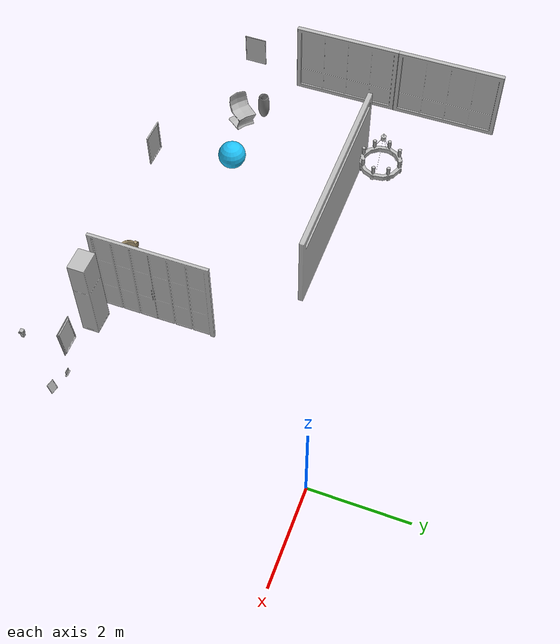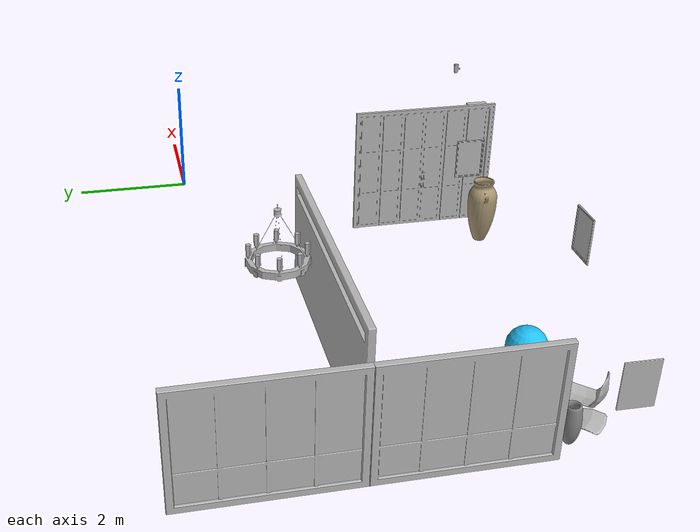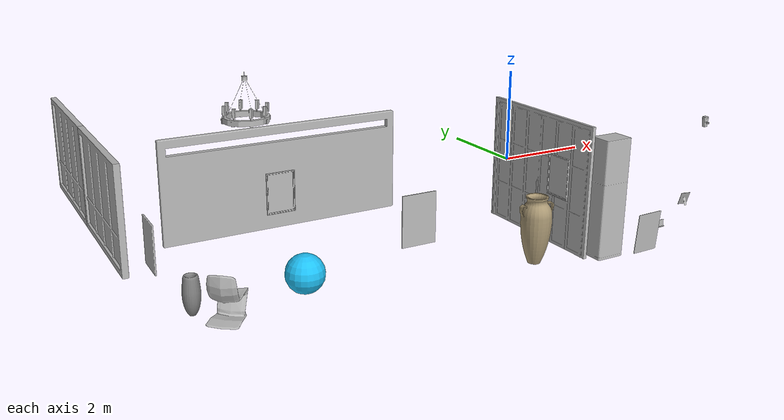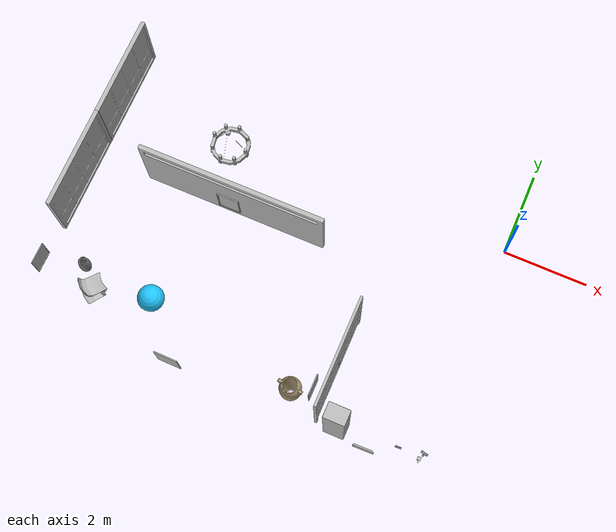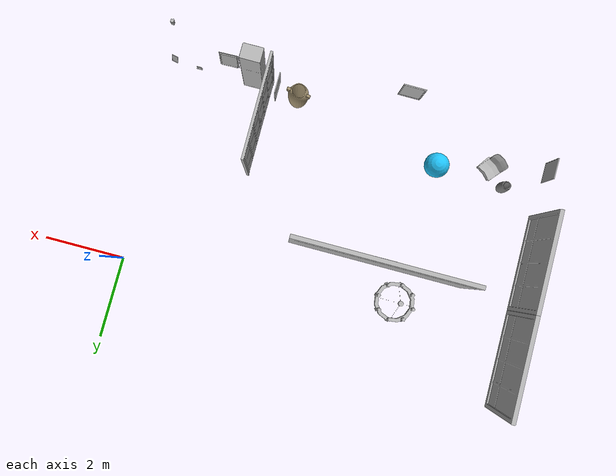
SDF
<sdf version="1.6">
 <world name="default">
  <model name="AirconditionerB_01_001">
   <static>1</static>
   <link name="aws_robomaker_residential_AirconditionerB_01::link">
    <inertial><mass>1</mass></inertial>
    <collision name="collision">
     <geometry>
      <mesh>
       <uri>model://aws_robomaker_residential_AirconditionerB_01/meshes/aws_AirconditionerB_01_collision.DAE</uri>
       <scale>1 1 1</scale>
      </mesh>
     </geometry>
    </collision>
    <visual name="visual">
     <geometry>
      <mesh>
       <uri>model://aws_robomaker_residential_AirconditionerB_01/meshes/aws_AirconditionerB_01_visual.DAE</uri>
      </mesh>
     </geometry>
     <meta><layer>1</layer></meta>
    </visual>
   </link>
   <pose>-2.00466 -5.22661 0.003485 0 -0 0</pose>
  </model>
  <model name="Ball_01_003">
   <static>1</static>
   <link name="aws_robomaker_residential_Ball_01::link">
    <inertial>
     <mass>0.12</mass>
     <inertia>
      <ixx>0.030752</ixx>
      <ixy>0</ixy>
      <ixz>0</ixz>
      <iyy>0.030752</iyy>
      <iyz>0</iyz>
      <izz>0.030752</izz>
     </inertia>
    </inertial>
    <collision name="collision">
     <geometry><sphere><radius>0.31</radius></sphere></geometry>
     <surface>
      <friction><ode><mu>0.85</mu><mu2>0.85</mu2></ode></friction>
      <contact><ode><kd>8500</kd><max_vel>5.1</max_vel></ode></contact>
     </surface>
    </collision>
    <visual name="visual">
     <geometry><sphere><radius>0.31</radius></sphere></geometry>
     <material><diffuse>0.12 0.76 0.97 1</diffuse><ambient>0.03 0.21 0.27 1</ambient></material>
     <meta><layer>1</layer></meta>
    </visual>
   </link>
   <pose>-6.9455 -4.22174 0.318684 0 -0 0</pose>
  </model>
  <model name="ChairD_01_003">
   <static>1</static>
   <link name="aws_robomaker_residential_ChairD_01::link">
    <inertial>
     <mass>4.5</mass>
     <inertia><ixy>0</ixy><ixz>0</ixz><iyz>0</iyz><ixx>0.217</ixx><iyy>0.217</iyy><izz>0.067</izz></inertia>
    </inertial>
    <collision name="collision">
     <geometry>
      <mesh>
       <uri>model://aws_robomaker_residential_ChairD_01/meshes/aws_ChairD_01_collision.DAE</uri>
       <scale>1 1 1</scale>
      </mesh>
     </geometry>
    </collision>
    <visual name="visual">
     <geometry>
      <mesh><uri>model://aws_robomaker_residential_ChairD_01/meshes/aws_ChairD_01_visual.DAE</uri></mesh>
     </geometry>
     <meta><layer>1</layer></meta>
    </visual>
   </link>
   <pose>-8.27078 -4.50446 0 0 -0 0.869673</pose>
  </model>
  <model name="Chandelier_01_002">
   <static>1</static>
   <link name="aws_robomaker_residential_Chandelier_01::link">
    <inertial><mass>1</mass></inertial>
    <collision name="collision">
     <geometry>
      <mesh>
       <uri>model://aws_robomaker_residential_Chandelier_01/meshes/aws_Chandelier_01_collision.DAE</uri>
       <scale>1 1 1</scale>
      </mesh>
     </geometry>
    </collision>
    <visual name="visual">
     <geometry>
      <mesh><uri>model://aws_robomaker_residential_Chandelier_01/meshes/aws_Chandelier_01_visual.DAE</uri></mesh>
     </geometry>
     <meta><layer>2</layer></meta>
    </visual>
   </link>
   <static>1</static>
   <pose>-6.45106 -0.69204 1.81 0 -0 0</pose>
  </model>
  <model name="FoldingDoor_01_002">
   <static>1</static>
   <link name="aws_robomaker_residential_FoldingDoor_01::link">
    <inertial><mass>1</mass></inertial>
    <collision name="collision">
     <geometry>
      <mesh>
       <uri>model://aws_robomaker_residential_FoldingDoor_01/meshes/aws_FoldingDoor_01_collision.DAE</uri>
       <scale>1 1 1</scale>
      </mesh>
     </geometry>
    </collision>
    <visual name="visual">
     <geometry>
      <mesh><uri>model://aws_robomaker_residential_FoldingDoor_01/meshes/aws_FoldingDoor_01_visual.DAE</uri></mesh>
     </geometry>
     <meta><layer>2</layer></meta>
    </visual>
   </link>
   <static>1</static>
   <pose>-2.4611 -4.05332 0.041881 0 -0 0</pose>
  </model>
  <model name="LightC_01_002">
   <static>1</static>
   <link name="aws_robomaker_residential_LightC_01::link">
    <inertial><mass>1</mass></inertial>
    <collision name="collision">
     <geometry>
      <mesh>
       <uri>model://aws_robomaker_residential_LightC_01/meshes/aws_LightC_01_collision.DAE</uri>
       <scale>1 1 1</scale>
      </mesh>
     </geometry>
    </collision>
    <visual name="visual">
     <geometry>
      <mesh><uri>model://aws_robomaker_residential_LightC_01/meshes/aws_LightC_01_visual.DAE</uri></mesh>
     </geometry>
     <meta><layer>2</layer></meta>
    </visual>
   </link>
   <static>1</static>
   <pose>-0.138245 -5.44437 2 0 -0 0</pose>
  </model>
  <model name="PortraitA_01">
   <static>1</static>
   <link name="aws_robomaker_residential_PortraitA_01::link">
    <inertial><mass>1</mass></inertial>
    <collision name="collision">
     <geometry>
      <mesh>
       <uri>model://aws_robomaker_residential_PortraitA_01/meshes/aws_PortraitA_01_collision.DAE</uri>
       <scale>1 1 1</scale>
      </mesh>
     </geometry>
    </collision>
    <visual name="visual">
     <geometry>
      <mesh><uri>model://aws_robomaker_residential_PortraitA_01/meshes/aws_PortraitA_01_visual.DAE</uri></mesh>
     </geometry>
     <meta><layer>2</layer></meta>
    </visual>
   </link>
   <static>1</static>
   <pose>-2.71236 -4.81754 1 0 -0 1.5668</pose>
  </model>
  <model name="PortraitB_01">
   <static>1</static>
   <link name="aws_robomaker_residential_PortraitB_01::link">
    <inertial><mass>1</mass></inertial>
    <collision name="collision">
     <geometry>
      <mesh>
       <uri>model://aws_robomaker_residential_PortraitB_01/meshes/aws_PortraitB_01_collision.DAE</uri>
       <scale>1 1 1</scale>
      </mesh>
     </geometry>
    </collision>
    <visual name="visual">
     <geometry>
      <mesh><uri>model://aws_robomaker_residential_PortraitB_01/meshes/aws_PortraitB_01_visual.DAE</uri></mesh>
     </geometry>
     <meta><layer>2</layer></meta>
    </visual>
   </link>
   <static>1</static>
   <pose>-1.27968 -5.42963 0 -0.076901 0 -3.11672</pose>
  </model>
  <model name="PortraitC_01">
   <static>1</static>
   <link name="aws_robomaker_residential_PortraitC_01::link">
    <inertial><mass>1</mass></inertial>
    <collision name="collision">
     <geometry>
      <mesh>
       <uri>model://aws_robomaker_residential_PortraitC_01/meshes/aws_PortraitC_01_collision.DAE</uri>
       <scale>1 1 1</scale>
      </mesh>
     </geometry>
    </collision>
    <visual name="visual">
     <geometry>
      <mesh><uri>model://aws_robomaker_residential_PortraitC_01/meshes/aws_PortraitC_01_visual.DAE</uri></mesh>
     </geometry>
     <meta><layer>2</layer></meta>
    </visual>
   </link>
   <static>1</static>
   <pose>-9.2949 -4.52608 1 0 -0 1.55473</pose>
  </model>
  <model name="PortraitE_01">
   <static>1</static>
   <link name="aws_robomaker_residential_PortraitE_01::link">
    <inertial><mass>1</mass></inertial>
    <collision name="collision">
     <geometry>
      <mesh>
       <uri>model://aws_robomaker_residential_PortraitE_01/meshes/aws_PortraitE_01_collision.DAE</uri>
       <scale>1 1 1</scale>
      </mesh>
     </geometry>
    </collision>
    <visual name="visual">
     <geometry>
      <mesh><uri>model://aws_robomaker_residential_PortraitE_01/meshes/aws_PortraitE_01_visual.DAE</uri></mesh>
     </geometry>
     <meta><layer>2</layer></meta>
    </visual>
   </link>
   <static>1</static>
   <pose>-5.77309 -5.49247 1 0 -0 3.13263</pose>
  </model>
  <model name="PortraitE_02">
   <static>1</static>
   <link name="aws_robomaker_residential_PortraitE_02::link">
    <inertial><mass>1</mass></inertial>
    <collision name="collision">
     <geometry>
      <mesh>
       <uri>model://aws_robomaker_residential_PortraitE_02/meshes/aws_PortraitE_01_collision.DAE</uri>
       <scale>1 1 1</scale>
      </mesh>
     </geometry>
    </collision>
    <visual name="visual">
     <geometry>
      <mesh><uri>model://aws_robomaker_residential_PortraitE_02/meshes/aws_PortraitE_01_visual.DAE</uri></mesh>
     </geometry>
     <meta><layer>2</layer></meta>
    </visual>
   </link>
   <static>1</static>
   <pose>-6.19302 -1.59021 0.3 0 -0 0.00429</pose>
  </model>
  <model name="DeskPortraitA_01">
   <static>1</static>
   <link name="aws_robomaker_residential_DeskPortraitA_01::link">
    <inertial>
     <mass>1</mass>
     <inertia><ixx>0.0835</ixx><ixy>0</ixy><ixz>0</ixz><iyy>0.16</iyy><iyz>0</iyz><izz>0.08347</izz></inertia>
    </inertial>
    <collision name="collision">
     <geometry>
      <mesh>
       <uri>model://aws_robomaker_residential_DeskPortraitA_01/meshes/aws_DeskPortraitA_01_collision.DAE</uri>
       <scale>1 1 1</scale>
      </mesh>
     </geometry>
    </collision>
    <visual name="visual">
     <geometry>
      <mesh>
       <uri>model://aws_robomaker_residential_DeskPortraitA_01/meshes/aws_DeskPortraitA_01_visual.DAE</uri>
      </mesh>
     </geometry>
     <meta><layer>1</layer></meta>
    </visual>
   </link>
   <pose>-0.036864 -5.11016 0.49866 0 -0 2.92778</pose>
  </model>
  <model name="DeskPortraitD_02">
   <static>1</static>
   <link name="aws_robomaker_residential_DeskPortraitD_02::link">
    <inertial>
     <mass>0.4</mass>
     <inertia><ixx>0.0616</ixx><ixy>0</ixy><ixz>0</ixz><iyy>0.1313</iyy><iyz>0</iyz><izz>0.0803</izz></inertia>
    </inertial>
    <collision name="collision">
     <geometry>
      <mesh>
       <uri>model://aws_robomaker_residential_DeskPortraitD_02/meshes/aws_DeskPortraitD_01_collision.DAE</uri>
       <scale>1 1 1</scale>
      </mesh>
     </geometry>
     <surface>
      <friction><ode><mu>0.7</mu><mu2>0.7</mu2></ode></friction>
      <contact><ode><kd>28500</kd></ode></contact>
     </surface>
    </collision>
    <visual name="visual">
     <geometry>
      <mesh>
       <uri>model://aws_robomaker_residential_DeskPortraitD_02/meshes/aws_DeskPortraitD_01_visual.DAE</uri>
      </mesh>
     </geometry>
     <meta><layer>1</layer></meta>
    </visual>
   </link>
   <pose>-0.589211 -5.10989 0.192145 -1.5e-05 -0.000174 -3.11254</pose>
  </model>
  <model name="RoomWall_01_001">
   <static>1</static>
   <link name="aws_robomaker_residential_RoomWall_01::link">
    <inertial><mass>100</mass></inertial>
    <collision name="collision">
     <geometry>
      <mesh>
       <uri>model://aws_robomaker_residential_RoomWall_01/meshes/aws_RoomWall_01_collision.DAE</uri>
       <scale>1 1 1</scale>
      </mesh>
     </geometry>
    </collision>
    <visual name="visual">
     <geometry>
      <mesh><uri>model://aws_robomaker_residential_RoomWall_01/meshes/aws_RoomWall_01_visual.DAE</uri></mesh>
     </geometry>
     <meta><layer>2</layer></meta>
    </visual>
   </link>
   <static>1</static>
   <pose>-6.09755 -1.49618 0.028124 0 -0 0</pose>
  </model>
  <model name="RoomWindow_01_001">
   <static>1</static>
   <link name="aws_robomaker_residential_RoomWindow_01::link">
    <inertial><mass>1</mass></inertial>
    <collision name="collision">
     <geometry>
      <mesh>
       <uri>model://aws_robomaker_residential_RoomWindow_01/meshes/aws_RoomWindow_01_collision.DAE</uri>
       <scale>1 1 1</scale>
      </mesh>
     </geometry>
    </collision>
    <visual name="visual">
     <geometry>
      <mesh><uri>model://aws_robomaker_residential_RoomWindow_01/meshes/aws_RoomWindow_01_visual.DAE</uri></mesh>
     </geometry>
     <meta><layer>2</layer></meta>
    </visual>
   </link>
   <static>1</static>
   <pose>-9.4186 -0.026285 0.502739 0 -0 0</pose>
  </model>
  <model name="RoomWindow_01_002">
   <static>1</static>
   <link name="aws_robomaker_residential_RoomWindow_01::link">
    <inertial><mass>1</mass></inertial>
    <collision name="collision">
     <geometry>
      <mesh>
       <uri>model://aws_robomaker_residential_RoomWindow_01/meshes/aws_RoomWindow_01_collision.DAE</uri>
       <scale>1 1 1</scale>
      </mesh>
     </geometry>
    </collision>
    <visual name="visual">
     <geometry>
      <mesh><uri>model://aws_robomaker_residential_RoomWindow_01/meshes/aws_RoomWindow_01_visual.DAE</uri></mesh>
     </geometry>
     <meta><layer>2</layer></meta>
    </visual>
   </link>
   <static>1</static>
   <pose>-9.4186 -2.37409 0.502739 0 -0 0</pose>
  </model>
  <model name="vase_large_2">
   <link name="link_31">
    <visual name="visual">
     <geometry><mesh><uri>model://vase_large_2/meshes/vase3_1.dae</uri><scale>1 1 1</scale></mesh></geometry>
     <material>
      <script>
       <uri>model://vase_large_2/materials/scripts</uri>
       <uri>model://vase_large_2/materials/textures</uri>
       <name>vase_pattern2</name>
      </script>
     </material>
    </visual>
    <collision name="collision">
     <geometry><mesh><uri>model://vase_large_2/meshes/vase3_1.dae</uri><scale>1 1 1</scale></mesh></geometry>
    </collision>
   </link>
   <static>1</static>
   <pose>-3.20377 -4.92863 0 0 -0 0</pose>
  </model>
  <model name="vase_large_3">
   <link name="link_36">
    <pose>0.007975 -0.173271 0 0 -0 0</pose>
    <visual name="visual">
     <geometry><mesh><uri>model://vase_large_3/meshes/vase6.dae</uri><scale>1 1 1</scale></mesh></geometry>
     <material>
      <script>
       <uri>model://vase_large_3/materials/scripts</uri>
       <uri>model://vase_large_3/materials/textures</uri>
       <name>vase_pattern3</name>
      </script>
     </material>
    </visual>
    <collision name="collision">
     <geometry><mesh><uri>model://vase_large_3/meshes/vase6.dae</uri><scale>1 1 1</scale></mesh></geometry>
    </collision>
   </link>
   <static>1</static>
   <pose>-8.66193 -3.93112 0 0 -0 0</pose>
  </model>
 </world>
</sdf>
